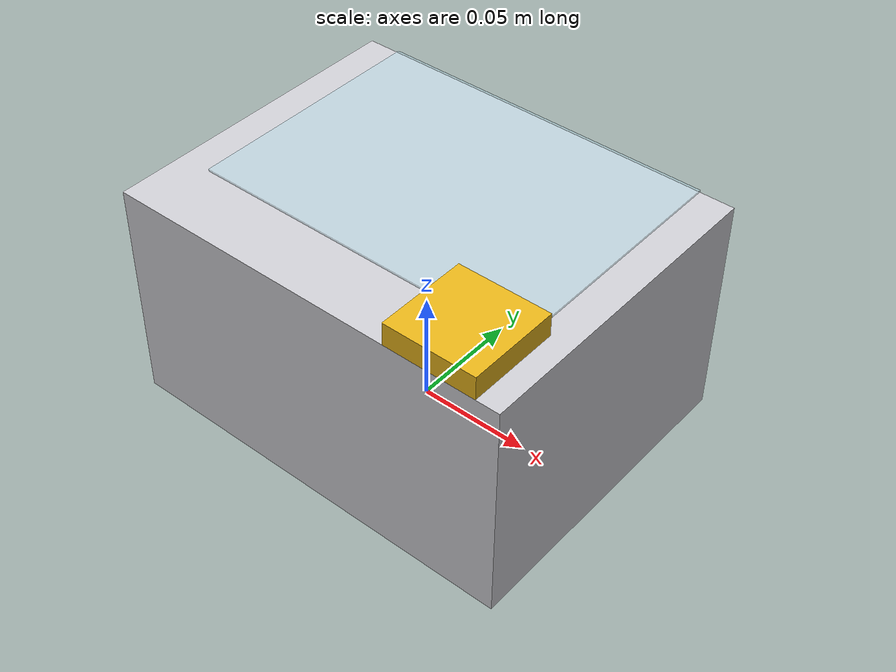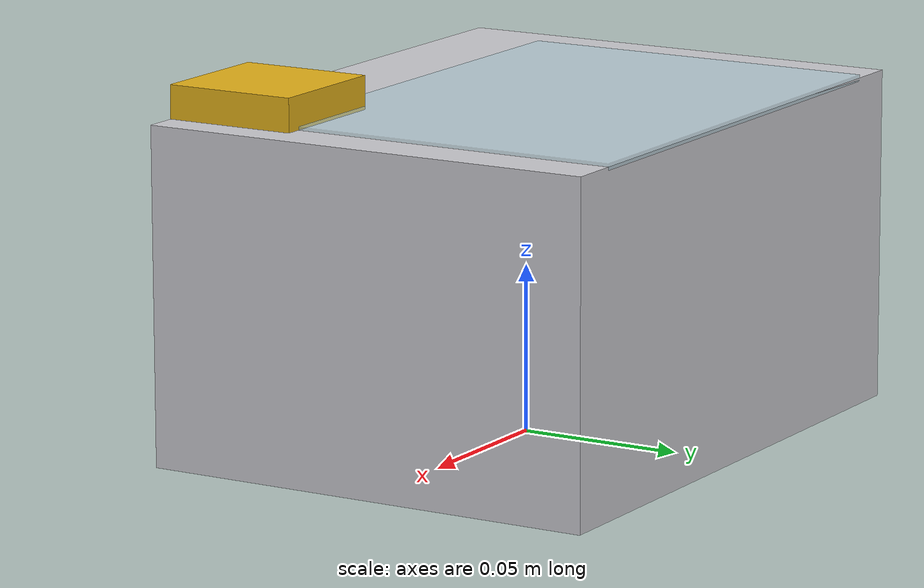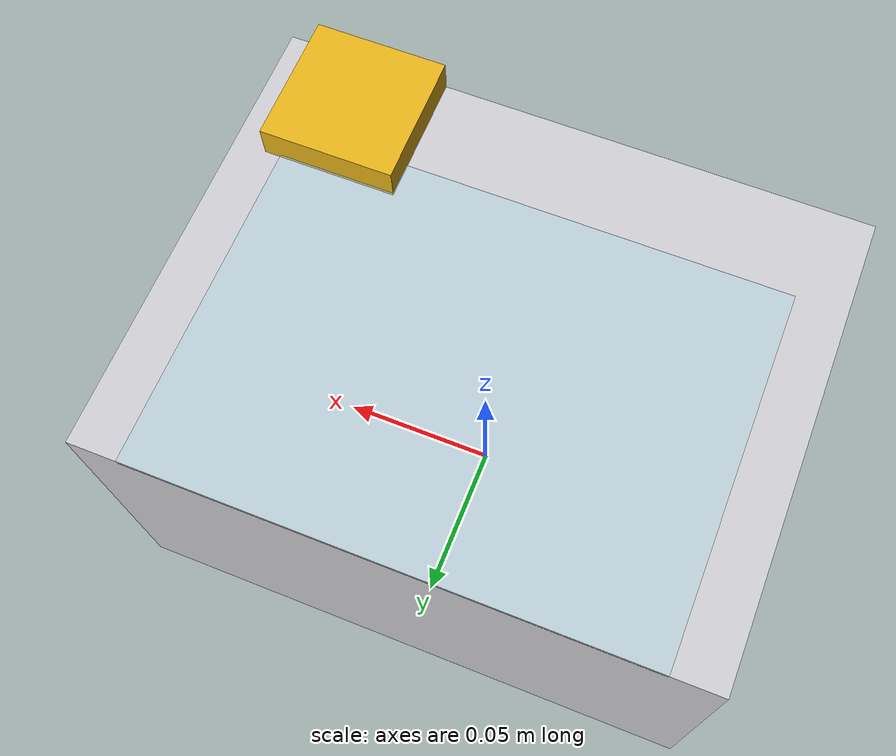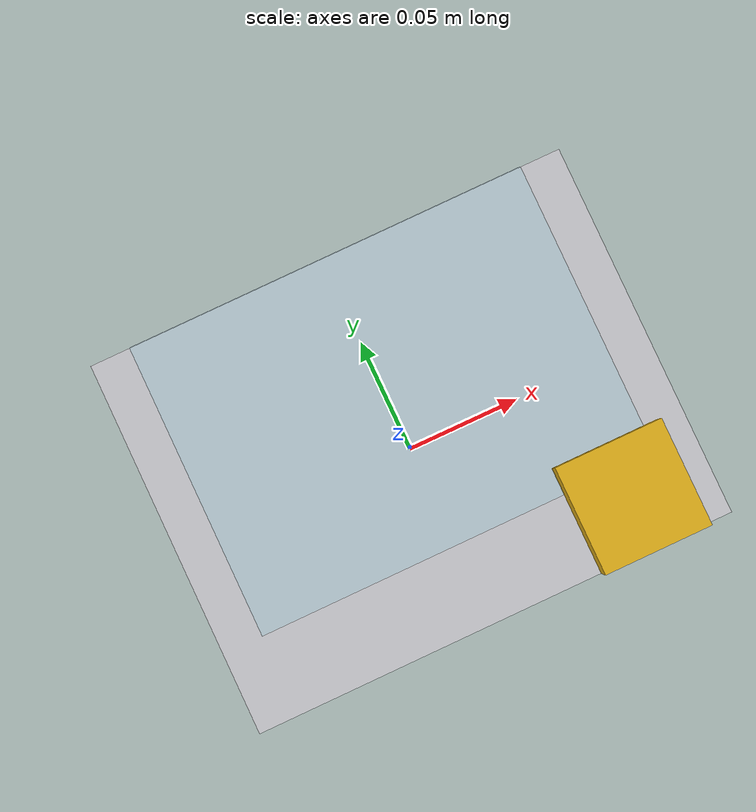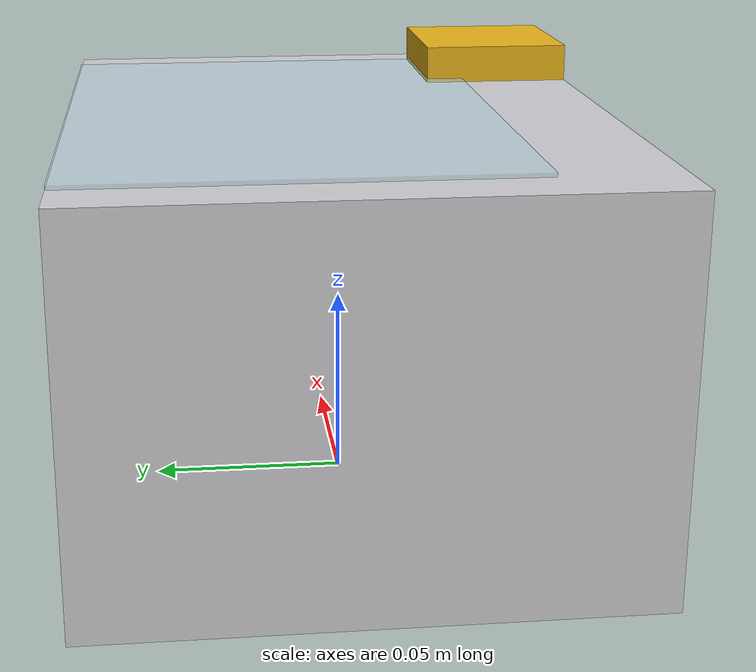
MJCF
<?xml version="1.0" encoding="utf-8"?>
<mujoco model="ultrasonic_cleaner">
  <compiler angle="radian" autolimits="true"/>
  <default>
    <default class="body"><geom contype="1" conaffinity="1"/></default>
  </default>
  <worldbody>
    <body name="base">
      <geom type="box" size="0.09 0.07 0.05" pos="0 0 0.05" rgba="0.8 0.8 0.82 1" class="body"/>
      <geom type="box" size="0.02 0.02 0.005" pos="0.06 -0.05 0.105" rgba="0.9 0.7 0.1 1" class="body"/>
      <body name="lid" pos="0 0.07 0.10">
        <joint name="lid_joint" type="hinge" axis="1 0 0" range="0 1.8" damping="0.5" frictionloss="0.5"/>
  <geom type="box" size="0.075 0.055 0.001" pos="0 -0.055 0" rgba="0.7 0.85 0.9 0.5" class="body"/>
      </body>
    </body>
  </worldbody>
</mujoco>
